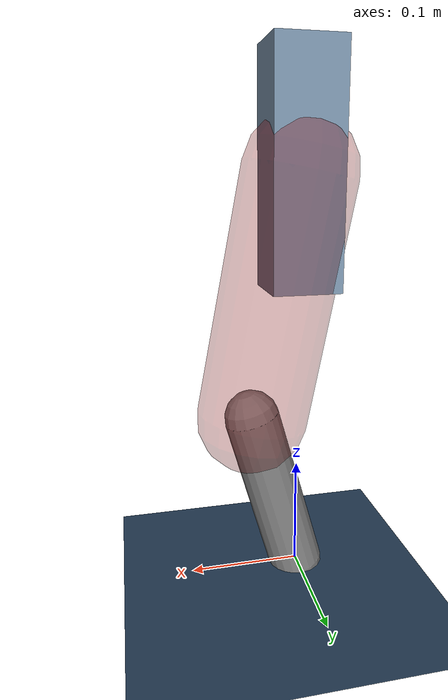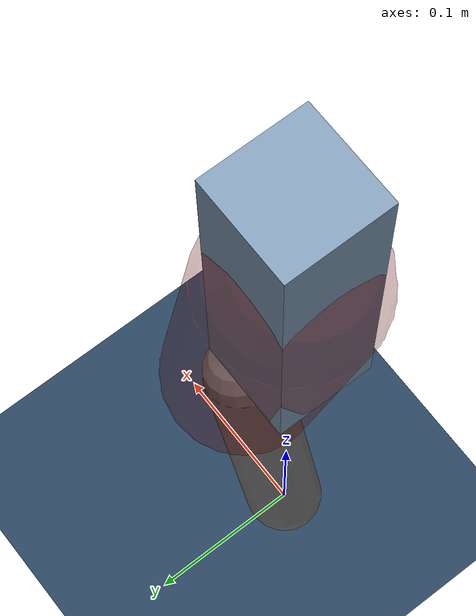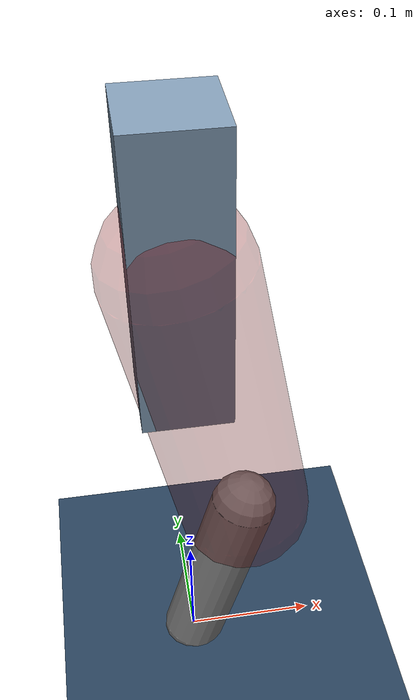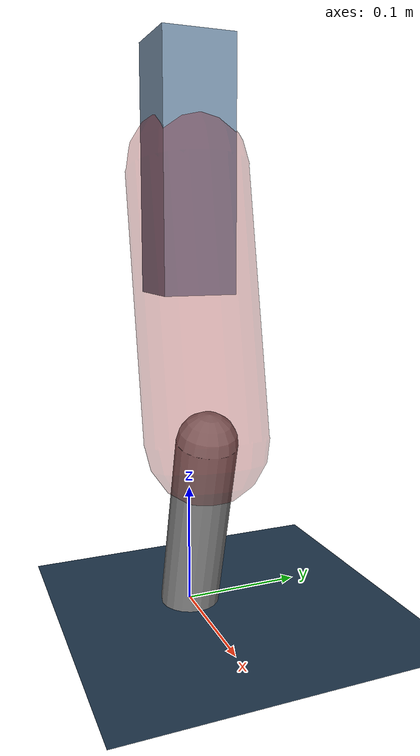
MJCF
<mujoco model="Hopper2D">
	<compiler inertiafromgeom="true" angle="radian" />
	<option timestep="0.001" integrator="implicit" cone="elliptic" solver="Newton" tolerance="1e-10" />

	<default>
		<geom contype="1" conaffinity="1" condim="3" friction="2 0.005 0.0001" solref="0.005 1" />
		<joint limited="true" damping="0.1" />
	</default>

	<asset>
		<texture name="skybox" type="skybox" builtin="gradient" rgb1=".4 .6 .8" rgb2="0 0 0" width="800" height="800" />
		<texture name="grid" type="2d" builtin="checker" rgb1=".1 .2 .3" rgb2=".2 .3 .4" width="300" height="300" mark="edge" markrgb=".2 .3 .4" />
		<material name="ground" texture="grid" texrepeat="1 1" texuniform="true" reflectance="0.1" />
		<material name="leg" rgba="0.5 0.6 0.7 1" />
	</asset>

	<worldbody>

		<geom name="floor" type="plane" size="5 5 0.25" material="ground" />

		<light directional="false" diffuse="0.8 0.8 0.8" specular="0.3 0.3 0.3" pos="0 0 2" dir="0 0 -1" />
		<light mode="targetbodycom" target="base" directional="false" diffuse="0.8 0.8 0.8" specular="0.3 0.3 0.3" pos="0 0 2" dir="0 0 -1" />

		<camera name="fixed" pos="0 -2 1" xyaxes="1 0 0 0 0 1" />
		<camera name="tracking" mode="trackcom" pos="0 -3 1" />

		<body name="root" pos="0 0 0.36654709296089877">
			<joint name="slide_x" type="slide" axis="1 0 0" range="-100 100" />
			<joint name="slide_z" type="slide" axis="0 0 1" range="0 10" />

			<body name="base" pos="0 0 0">
				<geom name="torso" type="box" size="0.03 0.03 0.1" mass="1.0790000000000002" material="leg" />

				<body name="link1" pos="0 0 0" euler="0 1.37661332158175 0">
					<joint type="hinge" axis="0 -1 0" pos="0 0 0" name="hinge1" limited="true" range="-3.14 3.14" stiffness="0" damping="0.1" />
					<geom name="thigh" type="capsule" fromto="0 0 0 0.21999334711816482 0 0" size="0.05" rgba="0.5 0 0 0.3" mass="0.7796827025072285" />

					<body name="link2" pos="0.21999334711816482 0 0" euler="0 0.4687802782802066 0">
						<joint type="hinge" axis="0 -1 0" pos="0 0 0" name="hinge2" limited="true" range="-3.14 3.14" stiffness="0" damping="0.1" />
						<geom name="shank" type="capsule" fromto="0 0 0 0.15655374584273396 0 0" size="0.025" mass="0.3634983712584606" />

					</body>
				</body>
			</body>
		</body>
	</worldbody>

	<actuator>
		<motor name="torque1" joint="hinge1" ctrlrange="-8.954531861283442 8.954531861283442" ctrllimited="true" gear="1" />
		<motor name="torque2" joint="hinge2" ctrlrange="-12.921843128919594 12.921843128919594" ctrllimited="true" gear="1" />
	</actuator>
</mujoco>
